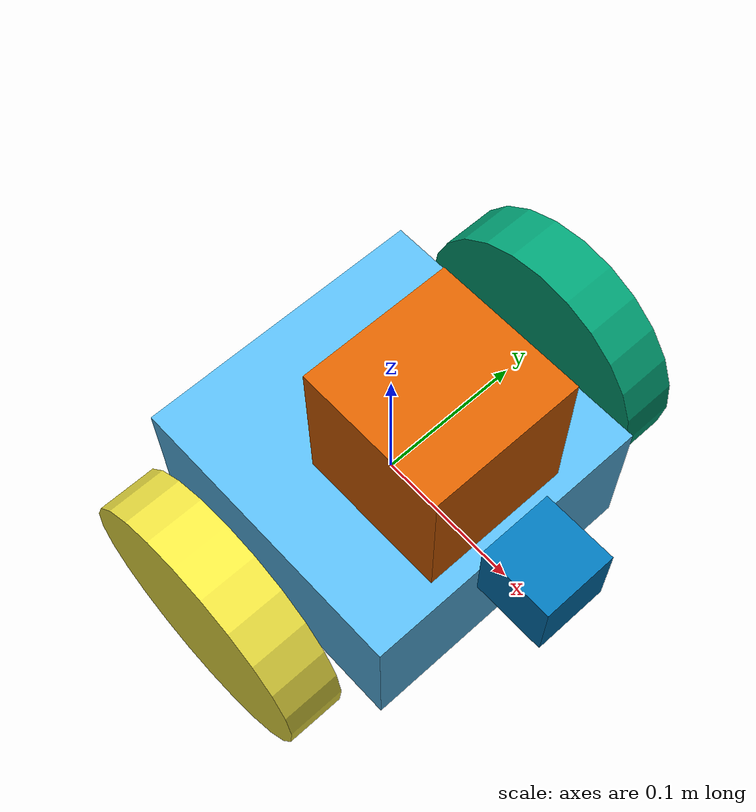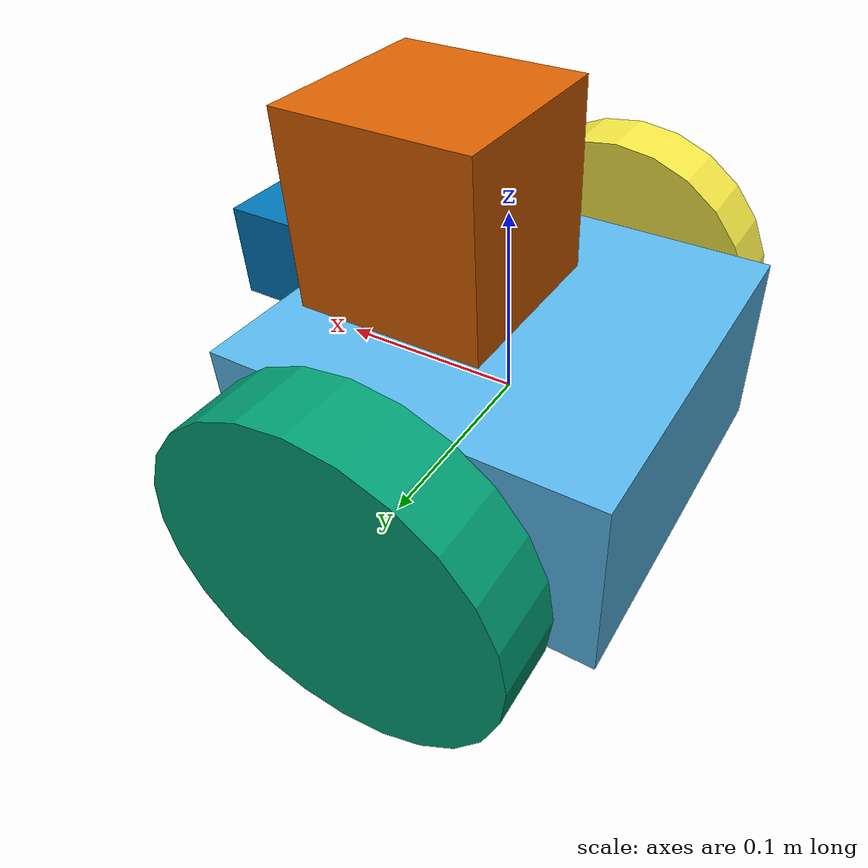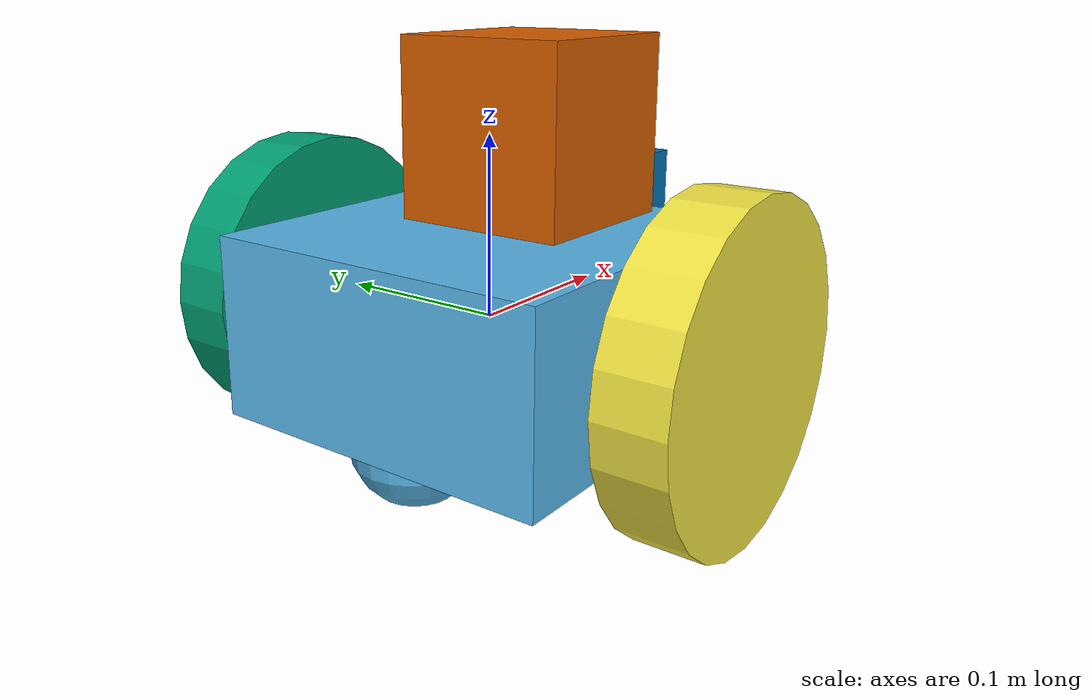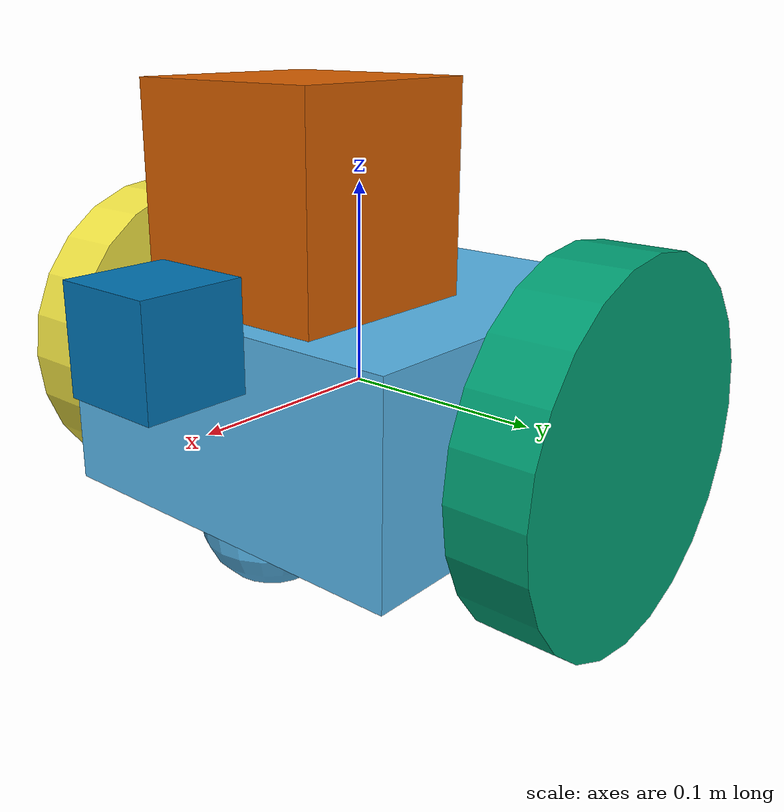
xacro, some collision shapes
<?xml version='1.0'?>

<robot name="my_robot_2" xmlns:xacro="http://www.ros.org/wiki/xacro">
  <xacro:include filename="$(find my_robot)/urdf/my_robot.gazebo" />
  <link name="robot_footprint"></link>

  <joint name="robot_footprint_joint" type="fixed">
    <origin xyz="0 0 0" rpy="0 0 0" />
    <parent link="robot_footprint"/>
    <child link="chassis" />
  </joint>

  <link name='chassis'>
    <pose>0 0 0.4 0 0 0</pose>

    <inertial>
      <mass value="15.0"/>
      <origin xyz="0.0 0 0" rpy=" 0 0 0"/>
      <inertia
          ixx="0.1" ixy="0" ixz="0"
          iyy="0.1" iyz="0"
          izz="0.1"
      />
    </inertial>

    <collision name='collision'>
      <origin xyz="0 0 0" rpy=" 0 0 0"/>
      <geometry>
        <box size=".2 .2 .1"/>
      </geometry>
    </collision>

    <visual name='chassis_visual'>
      <origin xyz="0 0 0" rpy=" 0 0 0"/>
      <geometry>
        <box size=".2 .2 .1"/>
      </geometry>
    </visual>

    <collision name='back_caster_collision'>
      <origin xyz="-0.0625 0 -0.05" rpy=" 0 0 0"/>
      <geometry>
        <sphere radius="0.035"/>
      </geometry>
      <surface>
        <friction>
          <ode>
            <mu>0.0</mu>
            <mu1>0.0</mu1>
          </ode>
        </friction>
      </surface>
    </collision>

    <visual name='back_caster_visual'>
      <origin xyz="-0.0625 0 -0.05" rpy=" 0 0 0"/>
      <geometry>
        <sphere radius="0.035"/>
      </geometry>
    </visual>

    <collision name='front_caster_collision'>
      <origin xyz="0.0625 0 -0.05" rpy=" 0 0 0"/>
      <geometry>
        <sphere radius="0.035"/>
      </geometry>
      <surface>
        <friction>
          <ode>
            <mu>0.0</mu>
            <mu1>0.0</mu1>
          </ode>
        </friction>
      </surface>
    </collision>

    <visual name='front_caster_visual'>
      <origin xyz="0.0625 0 -0.05" rpy=" 0 0 0"/>
      <geometry>
        <sphere radius="0.035"/>
      </geometry>
    </visual>

  </link>

  <link name='left_wheel'>
    <collision name='left_wheel_collision'>
      <origin xyz="0 0 0" rpy="0 1.5707 1.5707" />
      <geometry>
      <cylinder radius="0.0875" length="0.0375" />
      </geometry>
    </collision>
    <visual name='left_wheel_visual'>
      <origin xyz="0 0 0" rpy="0 1.5707 1.5707" />
      <geometry>
      <cylinder radius="0.0875" length="0.0375" />
      </geometry>
    </visual>
    <inertial name='left_wheel_inertial'>
      <mass value="5.0"/>
      <origin xyz="0 0 0" rpy="0 1.5707 1.5707" />
      <inertia
          ixx="0.1" ixy="0" ixz="0"
          iyy="0.1" iyz="0"
          izz="0.1"
      />
    </inertial>

  </link>
  <joint type="continuous" name="left_wheel_hinge">
    <origin xyz="0 0.1375 0" rpy="0 0 0"/>
    <child link="left_wheel"/>
    <parent link="chassis"/>
    <axis xyz="0 1 0" rpy="0 0 0"/>
    <limit effort="10000" velocity="1000"/>
    <dynamics damping="1.0" friction="1.0"/>
  </joint>

  <link name='right_wheel'>
    <collision name='right_wheel_collision'>
      <origin xyz="0 0 0" rpy="0 1.5707 1.5707" />
      <geometry>
      <cylinder radius="0.0875" length="0.0375" />
      </geometry>
    </collision>
    <visual name='right_wheel_visual'>
      <origin xyz="0 0 0" rpy="0 1.5707 1.5707" />
      <geometry>
      <cylinder radius="0.0875" length="0.0375" />
      </geometry>
    </visual>
    <inertial name='right_wheel_inertial'>
      <mass value="5.0"/>
      <origin xyz="0 0 0" rpy="0 1.5707 1.5707" />
      <inertia
          ixx="0.1" ixy="0" ixz="0"
          iyy="0.1" iyz="0"
          izz="0.1"
      />
    </inertial>

  </link>
  <joint type="continuous" name="right_wheel_hinge">
    <origin xyz="0 -0.1375 0" rpy="0 0 0"/>
    <child link="right_wheel"/>
    <parent link="chassis"/>
    <axis xyz="0 1 0" rpy="0 0 0"/>
    <limit effort="10000" velocity="1000"/>
    <dynamics damping="1.0" friction="1.0"/>
  </joint>

  <link name="camera_link">
    <visual name="camera_visual">
      <origin xyz="0 0 0" rpy="0 0 0"/>
      <geometry>
        <box size="0.05 0.05 0.05" />
      </geometry>
    </visual>
    <collision name="camera_collision">
      <origin xyz="0 0 0" rpy="0 0 0"/>
      <geometry>
        <box size="0.05 0.05 0.05" />
      </geometry>
    </collision>
    <inertial name="box_intertia" params="0.1 0.05 0.05 0.05">
      <mass value="0.1"/>
      <origin xyz="0 0 0" rpy="0 0 0"/>
      <inertia
          ixx="1e-6" ixy="0" ixz="0"
          iyy="1e-6" iyz="0"
          izz="1e-6"
      />
    </inertial>
  </link>
  <joint type="fixed" name="camera_joint">
    <origin xyz="0.125 0 0.05" rpy="0 0 0 " />
    <axis xyz="0 1 0" rpy="0 0 0" />
    <parent link="chassis" />
    <child link="camera_link" />
  </joint>

  <link name="hokuyo">
    <visual name="hokuyo_visual">
      <origin xyz="0 0 0" rpy="0 0 0"/>
      <geometry>
        <mesh filename="package://my_robot/meshes/hokuyo.dae"/>
      </geometry>
    </visual>
    <collision name="hokuyo_collision">
      <origin xyz="0 0 0" rpy="0 0 0"/>
      <geometry>
        <box size="0.1 0.1 0.1" />
      </geometry>
    </collision>
    <inertial name="hokuyo_inertial">
      <mass value="1e-5"/>
      <origin xyz="0 0 0" rpy="0 0 0"/>
      <inertia
          ixx="1e-6" ixy="0" ixz="0"
          iyy="1e-6" iyz="0"
          izz="1e-6"
      />
    </inertial>

  </link>
  <joint type="fixed" name="hokuyo_joint">
    <origin xyz="0.0375 0 0.1" rpy="0 0 0" />
    <axis xyz="0 1 0" rpy="0 0 0" />
    <parent link="chassis" />
    <child link="hokuyo" />
  </joint>
  <joint name="camera_optical_joint" type="fixed">
    <origin xyz="0 0 0" rpy="-1.5707 0 -1.5707"/>
    <parent link="camera_link"/>
    <child link="camera_link_optical"/>
  </joint>

  <link name="camera_link_optical">
  </link>

</robot>
